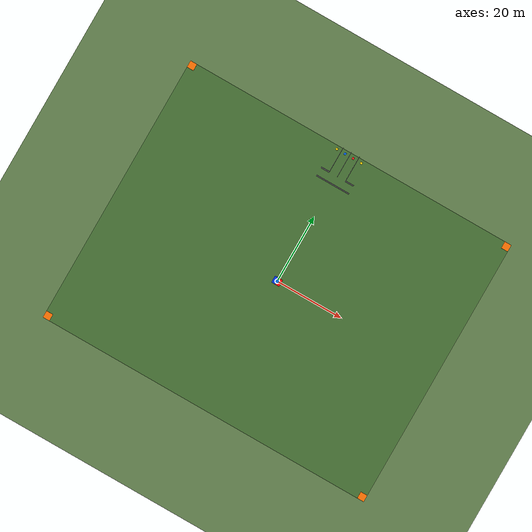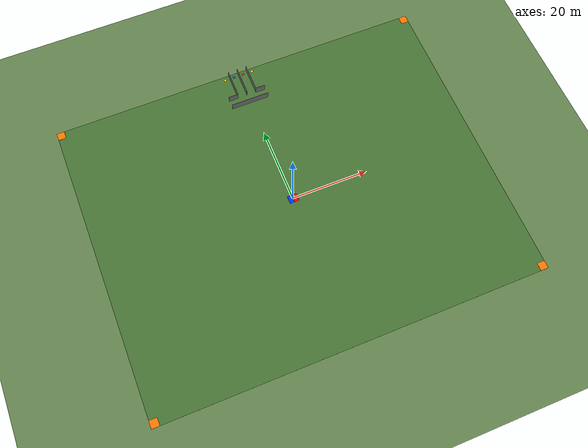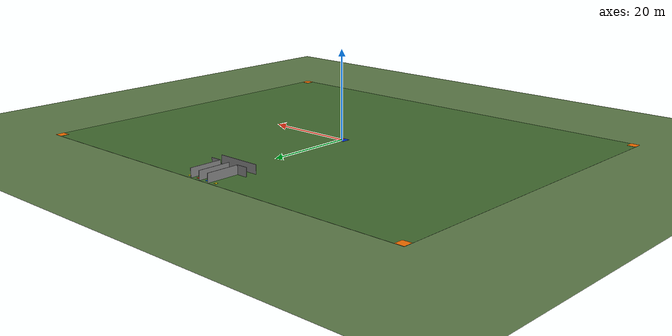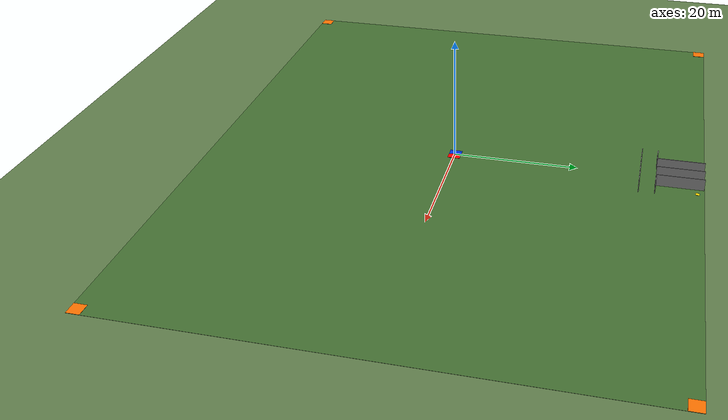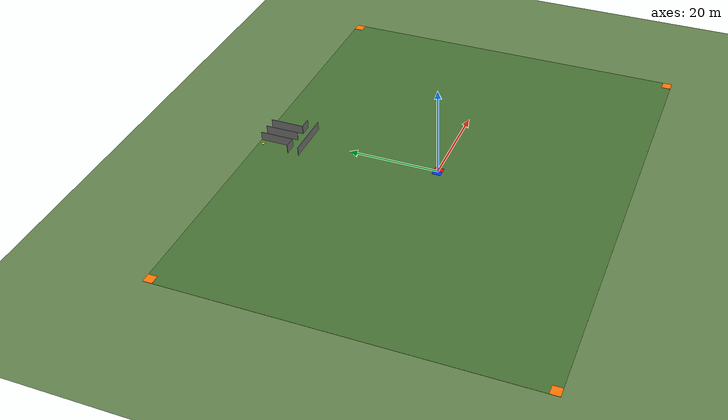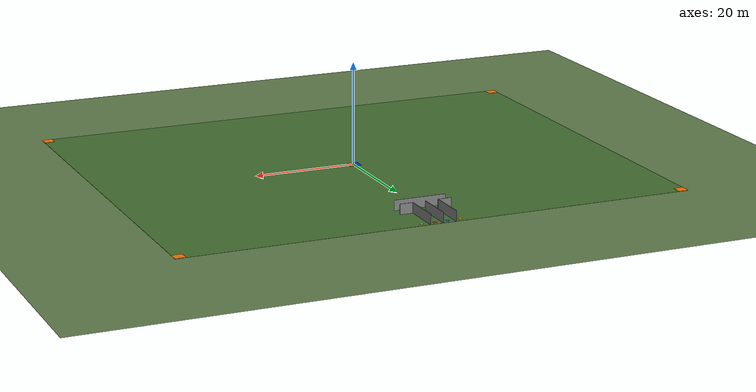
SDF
<?xml version="1.0" ?>
<sdf version="1.9">
  <world name="faio_krti2025">

    <physics name="1ms" type="ignored">
      <max_step_size>0.001</max_step_size>
      <real_time_factor>1.0</real_time_factor>
    </physics>

    <plugin filename="gz-sim-physics-system" name="gz::sim::systems::Physics"/>
    <plugin filename="gz-sim-user-commands-system" name="gz::sim::systems::UserCommands"/>
    <plugin filename="gz-sim-scene-broadcaster-system" name="gz::sim::systems::SceneBroadcaster"/>
    <plugin filename="gz-sim-sensors-system" name="gz::sim::systems::Sensors">
      <render_engine>ogre2</render_engine>
    </plugin>

    <scene>
      <ambient>0.65 0.65 0.65 1</ambient>
      <background>0.53 0.81 0.92 1</background>
      <sky>
        <clouds>
          <speed>4</speed>
        </clouds>
      </sky>
      <shadows>true</shadows>
    </scene>

    <light type="directional" name="sun">
      <cast_shadows>true</cast_shadows>
      <pose>0 0 100 0 0.4 0</pose>
      <diffuse>0.9 0.9 0.9 1</diffuse>
      <specular>0.3 0.3 0.3 1</specular>
      <direction>-0.5 0.1 -0.9</direction>
      <attenuation>
        <range>1000</range>
        <constant>0.9</constant>
        <linear>0.01</linear>
        <quadratic>0.001</quadratic>
      </attenuation>
    </light>

    <model name="ground_plane">
      <static>true</static>
      <link name="link">
        <collision name="col">
          <geometry>
            <plane>
              <normal>0 0 1</normal>
              <size>500 500</size>
            </plane>
          </geometry>
          <surface>
            <friction>
              <ode>
                <mu>1</mu>
                <mu2>1</mu2>
              </ode>
            </friction>
          </surface>
        </collision>
        <visual name="vis">
          <geometry>
            <plane>
              <normal>0 0 1</normal>
              <size>500 500</size>
            </plane>
          </geometry>
          <material>
            <ambient>0.38 0.50 0.30 1</ambient>
            <diffuse>0.38 0.50 0.30 1</diffuse>
          </material>
        </visual>
      </link>
    </model>

    <!-- =================================================
         MAIN FIELD  100 m (X) × 80 m (Y)
         ================================================= -->
    <model name="main_field">
      <static>true</static>
      <pose>0 0 0.01 0 0 0</pose>
      <link name="link">
        <collision name="col">
          <geometry>
            <box>
              <size>100 80 0.02</size>
            </box>
          </geometry>
        </collision>
        <visual name="vis">
          <geometry>
            <box>
              <size>100 80 0.02</size>
            </box>
          </geometry>
          <material>
            <ambient>0.24 0.40 0.18 1</ambient>
            <diffuse>0.27 0.44 0.20 1</diffuse>
            <specular>0.04 0.04 0.04 1</specular>
          </material>
        </visual>
      </link>
    </model>

    <model name="dp1_pad">
      <static>true</static>
      <pose>-49 39 0.03 0 0 0</pose>
      <link name="link">
        <collision name="col">
          <geometry>
            <box>
              <size>2 2 0.05</size>
            </box>
          </geometry>
        </collision>
        <visual name="vis">
          <geometry>
            <box>
              <size>2 2 0.05</size>
            </box>
          </geometry>
          <material>
            <ambient>1 0.45 0 1</ambient>
            <diffuse>1 0.45 0 1</diffuse>
          </material>
        </visual>
      </link>
    </model>

    <model name="dp2_pad">
      <static>true</static>
      <pose>49 39 0.03 0 0 0</pose>
      <link name="link">
        <collision name="col">
          <geometry>
            <box>
              <size>2 2 0.05</size>
            </box>
          </geometry>
        </collision>
        <visual name="vis">
          <geometry>
            <box>
              <size>2 2 0.05</size>
            </box>
          </geometry>
          <material>
            <ambient>1 0.45 0 1</ambient>
            <diffuse>1 0.45 0 1</diffuse>
          </material>
        </visual>
      </link>
    </model>

    <model name="dp3_pad">
      <static>true</static>
      <pose>49 -39 0.03 0 0 0</pose>
      <link name="link">
        <collision name="col">
          <geometry>
            <box>
              <size>2 2 0.05</size>
            </box>
          </geometry>
        </collision>
        <visual name="vis">
          <geometry>
            <box>
              <size>2 2 0.05</size>
            </box>
          </geometry>
          <material>
            <ambient>1 0.45 0 1</ambient>
            <diffuse>1 0.45 0 1</diffuse>
          </material>
        </visual>
      </link>
    </model>

    <model name="dp4_pad">
      <static>true</static>
      <pose>-49 -39 0.03 0 0 0</pose>
      <link name="link">
        <collision name="col">
          <geometry>
            <box>
              <size>2 2 0.05</size>
            </box>
          </geometry>
        </collision>
        <visual name="vis">
          <geometry>
            <box>
              <size>2 2 0.05</size>
            </box>
          </geometry>
          <material>
            <ambient>1 0.45 0 1</ambient>
            <diffuse>1 0.45 0 1</diffuse>
          </material>
        </visual>
      </link>
    </model>

    <model name="dp9_pad_red">
      <static>true</static>
      <pose>0.6 0 0.03 0 0 0</pose>
      <link name="link">
        <collision name="col">
          <geometry>
            <box>
              <size>1 1 0.05</size>
            </box>
          </geometry>
        </collision>
        <visual name="vis">
          <geometry>
            <box>
              <size>1.2 2 0.05</size>
            </box>
          </geometry>
          <material>
            <ambient>1 0 0 1</ambient>
            <diffuse>1 0 0 1</diffuse>
          </material>
        </visual>
      </link>
    </model>
    <model name="dp9_pad_blue">
      <static>true</static>
      <pose>-0.6 0 0.03 0 0 0</pose>
      <link name="link">
        <collision name="col">
          <geometry>
            <box>
              <size>1 1 0.05</size>
            </box>
          </geometry>
        </collision>
        <visual name="vis">
          <geometry>
            <box>
              <size>1.2 2 0.05</size>
            </box>
          </geometry>
          <material>
            <ambient>0 0.2 0.9 1</ambient>
            <diffuse>0 0.2 0.9 1</diffuse>
          </material>
        </visual>
      </link>
    </model>

    <model name="IndoorArena">
      <static>true</static>
      <pose>0 32.5 0 0 0 3.141593</pose>

      <link name="wall_top_back">
        <pose>0 2.5 1.0 0 0 0</pose>
        <collision name="collision">
          <geometry>
            <box>
              <size>10.1 0.1 2.0</size>
            </box>
          </geometry>
        </collision>
        <visual name="visual">
          <geometry>
            <box>
              <size>10.1 0.1 2.0</size>
            </box>
          </geometry>
          <material>
            <ambient>0.5 0.5 0.5 1</ambient>
            <diffuse>0.5 0.5 0.5 1</diffuse>
          </material>
        </visual>
      </link>

      <link name="wall_inner_left">
        <pose>-3.75 0 1.0 0 0 0</pose>
        <collision name="collision">
          <geometry>
            <box>
              <size>2.6 0.1 2.0</size>
            </box>
          </geometry>
        </collision>
        <visual name="visual">
          <geometry>
            <box>
              <size>2.6 0.1 2.0</size>
            </box>
          </geometry>
          <material>
            <ambient>0.5 0.5 0.5 1</ambient>
            <diffuse>0.5 0.5 0.5 1</diffuse>
          </material>
        </visual>
      </link>

      <link name="wall_inner_right">
        <pose>3.75 0 1.0 0 0 0</pose>
        <collision name="collision">
          <geometry>
            <box>
              <size>2.6 0.1 2.0</size>
            </box>
          </geometry>
        </collision>
        <visual name="visual">
          <geometry>
            <box>
              <size>2.6 0.1 2.0</size>
            </box>
          </geometry>
          <material>
            <ambient>0.5 0.5 0.5 1</ambient>
            <diffuse>0.5 0.5 0.5 1</diffuse>
          </material>
        </visual>
      </link>

      <link name="wall_left_long">
        <pose>-2.5 -3.725 1.0 0 0 0</pose>
        <collision name="collision">
          <geometry>
            <box>
              <size>0.1 7.45 2.0</size>
            </box>
          </geometry>
        </collision>
        <visual name="visual">
          <geometry>
            <box>
              <size>0.1 7.45 2.0</size>
            </box>
          </geometry>
          <material>
            <ambient>0.5 0.5 0.5 1</ambient>
            <diffuse>0.5 0.5 0.5 1</diffuse>
          </material>
        </visual>
      </link>

      <link name="wall_right_long">
        <pose>2.5 -3.725 1.0 0 0 0</pose>
        <collision name="collision">
          <geometry>
            <box>
              <size>0.1 7.45 2.0</size>
            </box>
          </geometry>
        </collision>
        <visual name="visual">
          <geometry>
            <box>
              <size>0.1 7.45 2.0</size>
            </box>
          </geometry>
          <material>
            <ambient>0.5 0.5 0.5 1</ambient>
            <diffuse>0.5 0.5 0.5 1</diffuse>
          </material>
        </visual>
      </link>

      <link name="wall_center_divider">
        <pose>0 -3.725 1.0 0 0 0</pose>
        <collision name="collision">
          <geometry>
            <box>
              <size>0.1 7.45 2.0</size>
            </box>
          </geometry>
        </collision>
        <visual name="visual">
          <geometry>
            <box>
              <size>0.1 7.45 2.0</size>
            </box>
          </geometry>
          <material>
            <ambient>0.5 0.5 0.5 1</ambient>
            <diffuse>0.5 0.5 0.5 1</diffuse>
          </material>
        </visual>
      </link>
    </model>

    <!-- Indoor start position markers (pads) -->
    <model name="marker_indoor_start_L">
      <static>true</static>
      <pose>-1.25 39 0.04 0 0 0</pose>
      <link name="link">
        <visual name="v">
          <geometry>
            <box>
              <size>0.60 0.60 0.02</size>
            </box>
          </geometry>
          <material>
            <ambient>0 0.4 1 1</ambient>
            <diffuse>0 0.4 1 1</diffuse>
          </material>
        </visual>
      </link>
    </model>
    <model name="marker_indoor_start_R">
      <static>true</static>
      <pose>1.25 39 0.04 0 0 0</pose>
      <link name="link">
        <visual name="v">
          <geometry>
            <box>
              <size>0.60 0.60 0.02</size>
            </box>
          </geometry>
          <material>
            <ambient>1 0.1 0.1 1</ambient>
            <diffuse>1 0.1 0.1 1</diffuse>
          </material>
        </visual>
      </link>
    </model>
    <model name="marker_indoor_start_out_L">
      <static>true</static>
      <pose>-3.80 39 0.04 0 0 0</pose>
      <link name="link">
        <visual name="v">
          <geometry>
            <box>
              <size>0.60 0.60 0.02</size>
            </box>
          </geometry>
          <material>
            <ambient>1 0.85 0 1</ambient>
            <diffuse>1 0.85 0 1</diffuse>
          </material>
        </visual>
      </link>
    </model>
    <model name="marker_indoor_start_out_R">
      <static>true</static>
      <pose>3.80 39 0.04 0 0 0</pose>
      <link name="link">
        <visual name="v">
          <geometry>
            <box>
              <size>0.60 0.60 0.02</size>
            </box>
          </geometry>
          <material>
            <ambient>1 0.85 0 1</ambient>
            <diffuse>1 0.85 0 1</diffuse>
          </material>
        </visual>
      </link>
    </model>

  </world>
</sdf>
